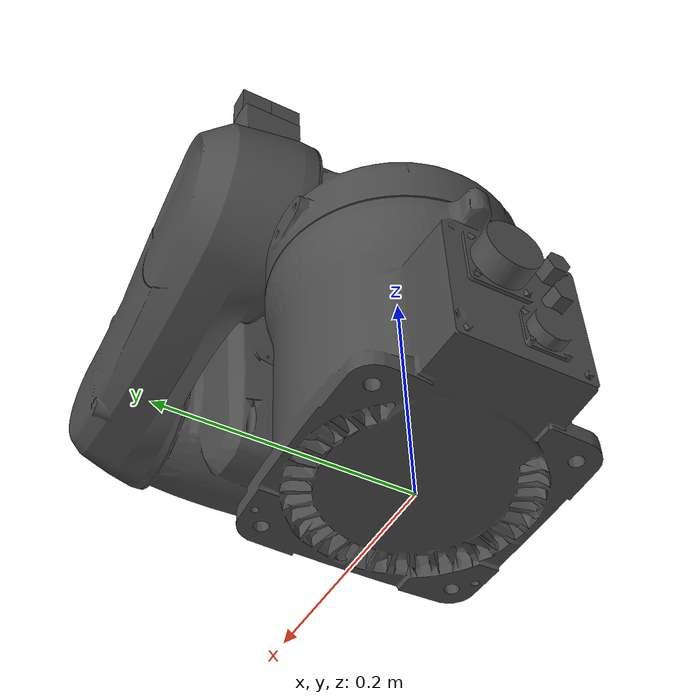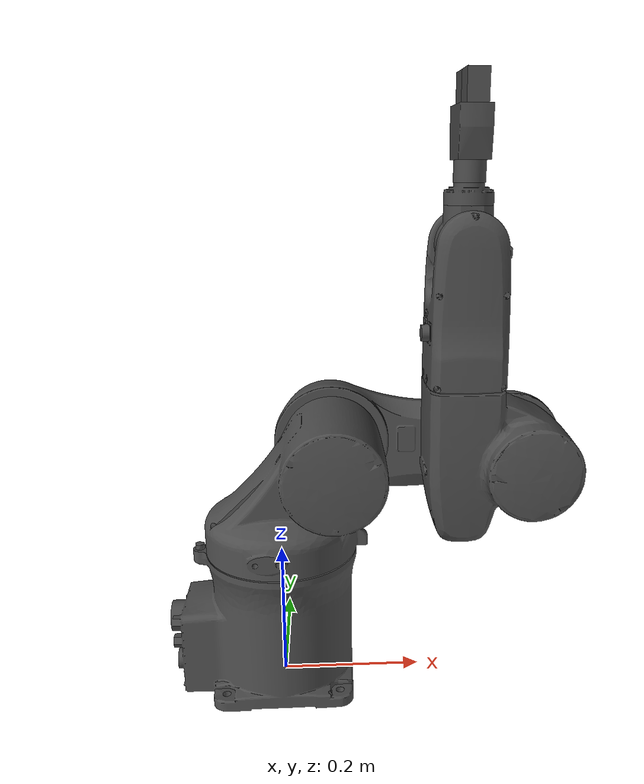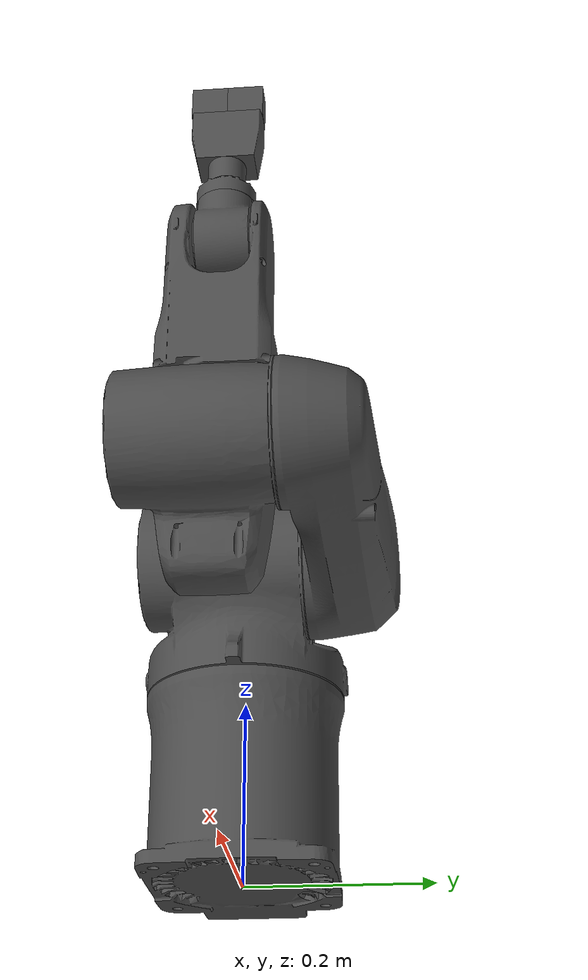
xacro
<?xml version="1.0"?>
<robot xmlns:xacro="http://www.ros.org/wiki/xacro" name="adept_viper_s650" >

	<xacro:include filename="$(find adept_viper_s650_support)/urdf/viper_s650_macro.xacro" />
	<xacro:adept_viper_s650 prefix=""/>

	<joint name="viper_s650_to_adapter" type="fixed">
		<parent link="tool0" />
		<child link = "adapter" />
		<origin xyz="0.0 0.0 0.0" rpy="3.1415926535898 0.0 0.0" />
	</joint>

	<xacro:include filename="$(find test_gripper_description)/urdf/gripper_test_macro.urdf.xacro" />  	<xacro:Gripper_test_macro prefix="" tcp_xyz_origin="0 0 -0.1" tcp_rpy_origin="0 0 0"/>

	<link name="adapter">
		<visual>
			<origin rpy="0 0 0" xyz="0 0 0"/>
			<geometry>
				<mesh filename="package://test_gripper_description/meshes/adapter/visual/Adapter_Viper_S650_to_Gripper.stl" scale="0.001 0.001 0.001"/>
			</geometry>
			<material name="grey">
				<color rgba=".30 .30 .30 1"/>
			</material>
		</visual>

		<collision>
			<origin rpy="0 0 0" xyz="0 0 0"/>
			<geometry>
				<mesh filename="package://test_gripper_description/meshes/adapter/visual/Adapter_Viper_S650_to_Gripper.stl" scale="0.001 0.001 0.001"/>
			</geometry>
		</collision>
	</link>

	<joint name="adapter_to_test_gripper" type="fixed">
		<parent link="adapter" />
		<child link = "gripper_base_link" />
		<origin xyz="0.0 0.0 -0.0275" rpy="0.0 0.0 0.0" />
	</joint>

</robot>

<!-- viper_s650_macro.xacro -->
<robot xmlns:xacro="http://www.ros.org/wiki/xacro">

	<xacro:macro name="adept_viper_s650" params="prefix">
		<!-- link list -->
		<link name="${prefix}base_link">
    			<visual>
      				<origin xyz="0 0 0" rpy="0 0 0"/>
      				<geometry>
        				<mesh filename="package://adept_viper_s650_support/meshes/viper_s650/visual/base_link.stl" scale="0.001 0.001 0.001"/>
      				</geometry>
				<material name="grey">
					<color rgba=".30 .30 .30 1"/>
				</material>
    			</visual>
    			<collision>
      				<origin xyz="0 0 0" rpy="0 0 0"/>
      				<geometry>
        				<mesh filename="package://adept_viper_s650_support/meshes/viper_s650/collision/base_link.stl" scale="0.001 0.001 0.001"/>
      				</geometry>
    			</collision>
  		</link>

		<link name="${prefix}link_1">
			<visual>
				<origin xyz="0 0 0" rpy="0 0 0"/>
				<geometry>
					<mesh filename="package://adept_viper_s650_support/meshes/viper_s650/visual/link_1.stl" scale="0.001 0.001 0.001"/>
				</geometry>
				<material name="grey"/>
			</visual>
			<collision>
				<origin xyz="0 0 0" rpy="0 0 0"/>
				<geometry>
					<mesh filename="package://adept_viper_s650_support/meshes/viper_s650/collision/link_1.stl" scale="0.001 0.001 0.001"/>
				</geometry>
			</collision>
		</link>

		<link name="${prefix}link_2">
			<visual>
				<origin xyz="0 0 0" rpy="0 0 0"/>
				<geometry>
					<mesh filename="package://adept_viper_s650_support/meshes/viper_s650/visual/link_2.stl" scale="0.001 0.001 0.001"/>
				</geometry>
				<material name="grey"/>
			</visual>
			<collision>
				<origin xyz="0 0 0" rpy="0 0 0"/>
				<geometry>
					<mesh filename="package://adept_viper_s650_support/meshes/viper_s650/collision/link_2.stl" scale="0.001 0.001 0.001"/>
				</geometry>
			</collision>
		</link>

		<link name="${prefix}link_3">
			<visual>
				<origin xyz="0 0 0" rpy="0 0 0"/>
				<geometry>
					<mesh filename="package://adept_viper_s650_support/meshes/viper_s650/visual/link_3.stl" scale="0.001 0.001 0.001"/>
				</geometry>
				<material name="grey"/>0,00
			</visual>
			<collision>
				<origin xyz="0 0 0" rpy="0 0 0"/>
				<geometry>
					<mesh filename="package://adept_viper_s650_support/meshes/viper_s650/collision/link_3.stl" scale="0.001 0.001 0.001"/>
				</geometry>
			</collision>
		</link>

		<link name="${prefix}link_4">
			<visual>
				<origin xyz="0 0 0" rpy="0 0 0"/>
				<geometry>
					<mesh filename="package://adept_viper_s650_support/meshes/viper_s650/visual/link_4.stl" scale="0.001 0.001 0.001"/>
				</geometry>
				<material name="grey"/>
				</visual>
			<collision>
				<origin xyz="0 0 0" rpy="0 0 0"/>
				<geometry>
					<mesh filename="package://adept_viper_s650_support/meshes/viper_s650/collision/link_4.stl" scale="0.001 0.001 0.001"/>
				</geometry>
			</collision>
		</link>

		<link name="${prefix}link_5">
			<visual>
				<origin xyz="0 0 0" rpy="0 0 0"/>
				<geometry>
					<mesh filename="package://adept_viper_s650_support/meshes/viper_s650/visual/link_5.stl" scale="0.001 0.001 0.001"/>
				</geometry>
				<material name="grey"/>
			</visual>
			<collision>
				<origin xyz="0 0 0" rpy="0 0 0"/>
				<geometry>
					<mesh filename="package://adept_viper_s650_support/meshes/viper_s650/collision/link_5.stl" scale="0.001 0.001 0.001"/>
				</geometry>
			</collision>
		</link>

		<link name="${prefix}link_6">

			<visual>
				<origin xyz="0 0 0" rpy="0 0 0"/>
				<geometry>
					<mesh filename="package://adept_viper_s650_support/meshes/viper_s650/visual/link_6.stl" scale="0.001 0.001 0.001"/>
				</geometry>
				<material name="grey"/>
			</visual>
			<collision>
				<origin xyz="0 0 0" rpy="0 0 0"/>
				<geometry>
					<mesh filename="package://adept_viper_s650_support/meshes/viper_s650/collision/link_6.stl" scale="0.001 0.001 0.001"/>
				</geometry>
			</collision>
		</link>
    		<link name="${prefix}tool0"/>
		<!-- end of the link list -->

		<!-- join list -->
		<joint name="${prefix}joint_1" type="revolute">
			<origin xyz="0 0 0.203" rpy="0 0 0"/>
			<parent link="${prefix}base_link"/>
			<child link="${prefix}link_1"/>
			<axis xyz="0 0 1"/>
			<limit effort="0" lower="-2.9671" upper="2.9671" velocity="5.7247"/>
		</joint>

		<joint name="${prefix}joint_2" type="revolute">
			<origin xyz="0.075 0 0.132" rpy="0 0 0"/>
			<parent link="${prefix}link_1"/>
			<child link="${prefix}link_2"/>
			<axis xyz="0 1 0"/>
			<limit effort="0" lower="-3.3161" upper="0.7854" velocity="5.2360"/>
		</joint>

		<joint name="${prefix}joint_3" type="revolute">
			<origin xyz="0.270 0 0" rpy="0 0 0"/>
			<parent link="${prefix}link_2"/>
			<child link="${prefix}link_3"/>
			<axis xyz="0 1 0"/>
			<limit effort="0" lower="-0.5061" upper="4.4680" velocity="6.5450"/>
		</joint>

		<joint name="${prefix}joint_4" type="revolute">
			<origin xyz="-0.09 0 0.108" rpy="0 0 0"/>
			<parent link="${prefix}link_3"/>
			<child link="${prefix}link_4"/>
			<axis xyz="0 0 1"/>
			<limit effort="0" lower="-3.3161" upper="3.3161" velocity="6.5450"/>
		</joint>

		<joint name="${prefix}joint_5" type="revolute">
			<origin xyz="0 0 0.187" rpy="0 0 0"/>
			<parent link="${prefix}link_4"/>
			<child link="${prefix}link_5"/>
			<axis xyz="0 1 0"/>
			<limit effort="0" lower="-2.0944" upper="2.0944" velocity="6.54"/>
		</joint>

		<joint name="${prefix}joint_6" type="revolute">
			<origin xyz="0 0 0.080" rpy="0 0 0"/>
			<parent link="${prefix}link_5"/>
			<child link="${prefix}link_6"/>
			<axis xyz="0 0 1"/>
			<limit effort="0" lower="-6.2832" upper="6.2832" velocity="10.4720"/>
		</joint>
		<joint name="${prefix}joint_6-tool0" type="fixed">
			<origin xyz="0 0 0.0" rpy="0 0 0"/>
			<parent link="${prefix}link_6"/>
			<child link="${prefix}tool0"/>
        		<origin xyz="0 0 0" rpy="0 1.57079632679 0"/>
		</joint>
		<!-- end of the joint list -->

		<!-- ROS base_link to Adept World Coordinates transform -->
		<link name="${prefix}base" />
		<joint name="${prefix}base_link-base" type="fixed">
			<origin xyz="0 0 0" rpy="0 0 0"/>
			<parent link="${prefix}base_link"/>
			<child link="${prefix}base"/>
		</joint>
	</xacro:macro>
</robot>

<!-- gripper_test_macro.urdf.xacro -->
<robot xmlns:xacro="http://www.ros.org/wiki/xacro">

	<xacro:macro name="Gripper_test_macro" params="prefix tcp_xyz_origin tcp_rpy_origin ">

		<link name="${prefix}gripper_base_link">
			<visual>
				<origin xyz="0 0 0.0275" rpy="0 0 0"/>
				<geometry>
					<mesh filename="package://test_gripper_description/meshes/gripper_base/visual/gripper_base.stl" scale="0.001 0.001 0.001"/>
				</geometry>
				<material name="grey">
					<color rgba=".30 .30 .30 1"/>
				</material>

			</visual>
    			<collision>
      				<origin xyz="0 0 0.0275" rpy="0 0 0"/>
      				<geometry>
        				<mesh filename="package://test_gripper_description/meshes/gripper_base/collision/gripper_base.stl" scale="0.001 0.001 0.001"/>
      				</geometry>
    			</collision>
		</link>

		<joint name="${prefix}gripper_jaw_1_joint" type="prismatic">
			<origin xyz="0 0.024 -0.060" rpy="0 0 0"/>

			<parent link="${prefix}gripper_base_link"/>
			<child link="${prefix}gripper_jaw_1_link"/>
			<axis xyz="0 1 0"/>
			<limit lower="0.000" upper="0.008" effort="1200" velocity="0.15"/>
		</joint>

		<link name="${prefix}gripper_jaw_1_link">
			<visual>
				<origin xyz="0 -0.024 0.0875" rpy="0 0 0"/>
				<geometry>
					<mesh filename="package://test_gripper_description/meshes/gripper_jaw/visual/gripper_jaw_1.stl" scale="0.001 0.001 0.001"/>
				</geometry>
				<material name="grey" />

			</visual>
    			<collision>
      				<origin xyz="0 -0.024 0.0875" rpy="0 0 0"/>
      				<geometry>
        				<mesh filename="package://test_gripper_description/meshes/gripper_jaw/collision/gripper_jaw_1.stl" scale="0.001 0.001 0.001"/>
      				</geometry>
    			</collision>
		</link>

		<joint name="${prefix}gripper_jaw_2_joint" type="prismatic">
			<origin xyz="0 -0.024 -0.060" rpy="0 0 0"/>
			<parent link="${prefix}gripper_base_link"/>
			<child link="${prefix}gripper_jaw_2_link"/>
			<axis xyz="0 1 0"/>
			<limit lower="0.000" upper="-0.008" effort="1200" velocity="0.15"/>
			<mimic joint="${prefix}gripper_jaw_1_joint" multiplier="-1" />
		</joint>

		<link name="${prefix}gripper_jaw_2_link">
			<visual>
				<origin xyz="0 0.024 0.0875" rpy="0 0 0"/>
				<geometry>
					<mesh filename="package://test_gripper_description/meshes/gripper_jaw/visual/gripper_jaw_2.stl" scale="0.001 0.001 0.001"/>
				</geometry>
				<material name="grey" />

			</visual>
    			<collision>
      				<origin xyz="0 0.024 0.0875" rpy="0 0 0"/>
      				<geometry>
        				<mesh filename="package://test_gripper_description/meshes/gripper_jaw/collision/gripper_jaw_2.stl" scale="0.001 0.001 0.001"/>
      				</geometry>
    			</collision>
		</link>

		<joint name="${prefix}tcp_joint" type="fixed">
			<origin xyz="${tcp_xyz_origin}" rpy="${tcp_rpy_origin}" />
			<parent link="${prefix}gripper_base_link"/>
			<child link="${prefix}tcp_link"/>
		</joint>

		<link name="${prefix}tcp_link" />

	</xacro:macro>

</robot>
